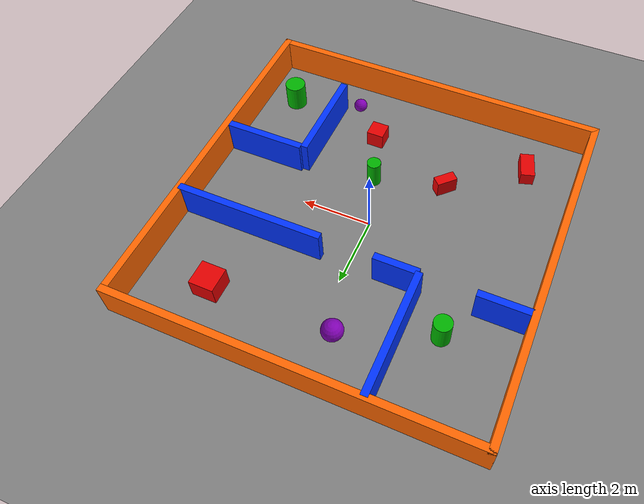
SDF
<?xml version="1.0" ?>
<sdf version="1.6">
  <world name="obstacle_world">

    <!--                  SCENE & LIGHTING                   -->
    <scene>
      <ambient>0.4 0.4 0.4 1</ambient>
      <background>0.7 0.7 0.7 1</background>
      <shadows>true</shadows>
    </scene>

    <light name="sun" type="directional">
      <cast_shadows>true</cast_shadows>
      <pose>0 0 10 0 0 0</pose>
      <diffuse>0.9 0.9 0.9 1</diffuse>
      <specular>0.3 0.3 0.3 1</specular>
      <direction>-0.5 0.1 -0.9</direction>
    </light>

    <!--                   PHYSICS                           -->
    <physics name="default_physics" default="true" type="ode">
      <max_step_size>0.001</max_step_size>
      <real_time_factor>1</real_time_factor>
      <real_time_update_rate>1000</real_time_update_rate>
    </physics>

    <!--                   GROUND PLANE                      -->
    <model name="ground_plane">
      <static>true</static>
      <link name="link">
        <collision name="collision">
          <geometry>
            <plane>
              <normal>0 0 1</normal>
              <size>50 50</size>
            </plane>
          </geometry>
          <surface>
            <friction>
              <ode>
                <mu>1.0</mu>
                <mu2>1.0</mu2>
              </ode>
            </friction>
          </surface>
        </collision>
        <visual name="visual">
          <geometry>
            <plane>
              <normal>0 0 1</normal>
              <size>50 50</size>
            </plane>
          </geometry>
          <material>
            <ambient>0.5 0.5 0.5 1</ambient>
            <diffuse>0.5 0.5 0.5 1</diffuse>
            <specular>0.1 0.1 0.1 1</specular>
            <emissive>0 0 0 1</emissive>
          </material>
        </visual>
      </link>
    </model>

    <!--              OUTER BOUNDARY WALLS (10×10 m)         -->

    <!-- North wall -->
    <model name="wall_north">
      <static>true</static>
      <pose>0 5 0.5 0 0 0</pose>
      <link name="link">
        <collision name="collision">
          <geometry><box><size>10.2 0.2 1.0</size></box></geometry>
        </collision>
        <visual name="visual">
          <geometry><box><size>10.2 0.2 1.0</size></box></geometry>
          <material>
            <ambient>1.0 0.5 0.0 1</ambient>
            <diffuse>1.0 0.4 0.0 1</diffuse>
            <specular>0.1 0.1 0.1 1</specular>
            <emissive>0 0 0 1</emissive>
          </material>
        </visual>
      </link>
    </model>

    <!-- South wall -->
    <model name="wall_south">
      <static>true</static>
      <pose>0 -5 0.5 0 0 0</pose>
      <link name="link">
        <collision name="collision">
          <geometry><box><size>10.2 0.2 1.0</size></box></geometry>
        </collision>
        <visual name="visual">
          <geometry><box><size>10.2 0.2 1.0</size></box></geometry>
          <material>
            <ambient>1.0 0.5 0.0 1</ambient>
            <diffuse>1.0 0.4 0.0 1</diffuse>
            <specular>0.1 0.1 0.1 1</specular>
            <emissive>0 0 0 1</emissive>
          </material>
        </visual>
      </link>
    </model>

    <!-- East wall -->
    <model name="wall_east">
      <static>true</static>
      <pose>5 0 0.5 0 0 0</pose>
      <link name="link">
        <collision name="collision">
          <geometry><box><size>0.2 10.2 1.0</size></box></geometry>
        </collision>
        <visual name="visual">
          <geometry><box><size>0.2 10.2 1.0</size></box></geometry>
          <material>
            <ambient>1.0 0.5 0.0 1</ambient>
            <diffuse>1.0 0.4 0.0 1</diffuse>
            <specular>0.1 0.1 0.1 1</specular>
            <emissive>0 0 0 1</emissive>
          </material>
        </visual>
      </link>
    </model>

    <!-- West wall -->
    <model name="wall_west">
      <static>true</static>
      <pose>-5 0 0.5 0 0 0</pose>
      <link name="link">
        <collision name="collision">
          <geometry><box><size>0.2 10.2 1.0</size></box></geometry>
        </collision>
        <visual name="visual">
          <geometry><box><size>0.2 10.2 1.0</size></box></geometry>
          <material>
            <ambient>1.0 0.5 0.0 1</ambient>
            <diffuse>1.0 0.4 0.0 1</diffuse>
            <specular>0.1 0.1 0.1 1</specular>
            <emissive>0 0 0 1</emissive>
          </material>
        </visual>
      </link>
    </model>

    <!--          INNER PARTITION WALLS (with passages)      -->
    <!--  Horizontal divider at y=1.5 split into 3 segments  -->
    <!--  with TWO 1.5 m gaps so all compartments reachable: -->
    <!--  [wall_h_far_left]  GAP-L  [wall_h_mid]  GAP-C  [wall_h_right] -->
    <!--  GAP-L (1.5 m) gives access to the upper-left area  -->
    <!--  GAP-C (1.5 m) is the central passage               -->

    <!-- Far-left segment: x = -5.0 to -3.5  (length 1.5 m) -->
    <model name="wall_h_far_left">
      <static>true</static>
      <pose>-4.25 1.5 0.5 0 0 0</pose>
      <link name="link">
        <collision name="collision">
          <geometry><box><size>1.5 0.2 1.0</size></box></geometry>
        </collision>
        <visual name="visual">
          <geometry><box><size>1.5 0.2 1.0</size></box></geometry>
          <material>
            <ambient>0.0 0.2 1.0 1</ambient>
            <diffuse>0.0 0.2 1.0 1</diffuse>
            <specular>0.1 0.1 0.1 1</specular>
            <emissive>0 0 0 1</emissive>
          </material>
        </visual>
      </link>
    </model>

    <!-- Middle segment: x = -2.0 to -0.75  (length 1.25 m) -->
    <model name="wall_h_mid">
      <static>true</static>
      <pose>-1.375 1.5 0.5 0 0 0</pose>
      <link name="link">
        <collision name="collision">
          <geometry><box><size>1.25 0.2 1.0</size></box></geometry>
        </collision>
        <visual name="visual">
          <geometry><box><size>1.25 0.2 1.0</size></box></geometry>
          <material>
            <ambient>0.0 0.2 1.0 1</ambient>
            <diffuse>0.0 0.2 1.0 1</diffuse>
            <specular>0.1 0.1 0.1 1</specular>
            <emissive>0 0 0 1</emissive>
          </material>
        </visual>
      </link>
    </model>

    <!-- Right segment: x = 0.75 to 5.0  (length 4.25 m) -->
    <model name="wall_h_right">
      <static>true</static>
      <pose>2.875 1.5 0.5 0 0 0</pose>
      <link name="link">
        <collision name="collision">
          <geometry><box><size>4.25 0.2 1.0</size></box></geometry>
        </collision>
        <visual name="visual">
          <geometry><box><size>4.25 0.2 1.0</size></box></geometry>
          <material>
            <ambient>0.0 0.2 1.0 1</ambient>
            <diffuse>0.0 0.2 1.0 1</diffuse>
            <specular>0.1 0.1 0.1 1</specular>
            <emissive>0 0 0 1</emissive>
          </material>
        </visual>
      </link>
    </model>

    <!-- Vertical wall dividing upper area: x=-2.0, y from 1.5 to 5.0 -->
    <model name="inner_wall_v1">
      <static>true</static>
      <pose>-2.0 3.25 0.5 0 0 0</pose>
      <link name="link">
        <collision name="collision">
          <geometry><box><size>0.2 3.5 1.0</size></box></geometry>
        </collision>
        <visual name="visual">
          <geometry><box><size>0.2 3.5 1.0</size></box></geometry>
          <material>
            <ambient>0.0 0.2 1.0 1</ambient>
            <diffuse>0.0 0.2 1.0 1</diffuse>
            <specular>0.1 0.1 0.1 1</specular>
            <emissive>0 0 0 1</emissive>
          </material>
        </visual>
      </link>
    </model>

    <!-- Vertical wall in lower-right: x=2.5, y from -3.9 to -1.1 -->
    <model name="inner_wall_v2">
      <static>true</static>
      <pose>2.5 -2.5 0.5 0 0 0</pose>
      <link name="link">
        <collision name="collision">
          <geometry><box><size>0.2 2.8 1.0</size></box></geometry>
        </collision>
        <visual name="visual">
          <geometry><box><size>0.2 2.8 1.0</size></box></geometry>
          <material>
            <ambient>0.0 0.2 1.0 1</ambient>
            <diffuse>0.0 0.2 1.0 1</diffuse>
            <specular>0.1 0.1 0.1 1</specular>
            <emissive>0 0 0 1</emissive>
          </material>
        </visual>
      </link>
    </model>

    <!-- Horizontal cap of the lower-right pocket: y=-1.1, x from 2.5 to 4.9 -->
    <model name="inner_wall_h2">
      <static>true</static>
      <pose>3.75 -1.1 0.5 0 0 0</pose>
      <link name="link">
        <collision name="collision">
          <geometry><box><size>2.3 0.2 1.0</size></box></geometry>
        </collision>
        <visual name="visual">
          <geometry><box><size>2.3 0.2 1.0</size></box></geometry>
          <material>
            <ambient>0.0 0.2 1.0 1</ambient>
            <diffuse>0.0 0.2 1.0 1</diffuse>
            <specular>0.1 0.1 0.1 1</specular>
            <emissive>0 0 0 1</emissive>
          </material>
        </visual>
      </link>
    </model>

    <!--              BOX OBSTACLES (static)                 -->

    <model name="box_1">
      <static>true</static>
      <pose>1.0 -3.0 0.25 0 0 0</pose>
      <link name="link">
        <collision name="collision">
          <geometry><box><size>0.5 0.5 0.5</size></box></geometry>
        </collision>
        <visual name="visual">
          <geometry><box><size>0.5 0.5 0.5</size></box></geometry>
          <material>
            <ambient>1.0 0.0 0.0 1</ambient>
            <diffuse>0.9 0.0 0.0 1</diffuse>
            <specular>0.1 0.1 0.1 1</specular>
            <emissive>0 0 0 1</emissive>
          </material>
        </visual>
      </link>
    </model>

    <model name="box_2">
      <static>true</static>
      <pose>-1.5 -2.0 0.25 0 0 0.785</pose>
      <link name="link">
        <collision name="collision">
          <geometry><box><size>0.6 0.3 0.5</size></box></geometry>
        </collision>
        <visual name="visual">
          <geometry><box><size>0.6 0.3 0.5</size></box></geometry>
          <material>
            <ambient>1.0 0.0 0.0 1</ambient>
            <diffuse>0.9 0.0 0.0 1</diffuse>
            <specular>0.1 0.1 0.1 1</specular>
            <emissive>0 0 0 1</emissive>
          </material>
        </visual>
      </link>
    </model>

    <model name="box_3">
      <static>true</static>
      <pose>3.0 3.5 0.3 0 0 0</pose>
      <link name="link">
        <collision name="collision">
          <geometry><box><size>0.7 0.7 0.6</size></box></geometry>
        </collision>
        <visual name="visual">
          <geometry><box><size>0.7 0.7 0.6</size></box></geometry>
          <material>
            <ambient>1.0 0.0 0.0 1</ambient>
            <diffuse>0.9 0.0 0.0 1</diffuse>
            <specular>0.1 0.1 0.1 1</specular>
            <emissive>0 0 0 1</emissive>
          </material>
        </visual>
      </link>
    </model>

    <model name="box_4">
      <static>true</static>
      <pose>-3.5 -3.5 0.2 0 0 0.3</pose>
      <link name="link">
        <collision name="collision">
          <geometry><box><size>0.4 0.8 0.4</size></box></geometry>
        </collision>
        <visual name="visual">
          <geometry><box><size>0.4 0.8 0.4</size></box></geometry>
          <material>
            <ambient>1.0 0.0 0.0 1</ambient>
            <diffuse>0.9 0.0 0.0 1</diffuse>
            <specular>0.1 0.1 0.1 1</specular>
            <emissive>0 0 0 1</emissive>
          </material>
        </visual>
      </link>
    </model>

    <!--            CYLINDER OBSTACLES (static)              -->

    <model name="cylinder_1">
      <static>true</static>
      <pose>-3.0 2.5 0.4 0 0 0</pose>
      <link name="link">
        <collision name="collision">
          <geometry><cylinder><radius>0.25</radius><length>0.8</length></cylinder></geometry>
        </collision>
        <visual name="visual">
          <geometry><cylinder><radius>0.25</radius><length>0.8</length></cylinder></geometry>
          <material>
            <ambient>0.0 0.7 0.0 1</ambient>
            <diffuse>0.0 0.7 0.0 1</diffuse>
            <specular>0.1 0.1 0.1 1</specular>
            <emissive>0 0 0 1</emissive>
          </material>
        </visual>
      </link>
    </model>

    <model name="cylinder_2">
      <static>true</static>
      <pose>0.5 -1.5 0.4 0 0 0</pose>
      <link name="link">
        <collision name="collision">
          <geometry><cylinder><radius>0.2</radius><length>0.8</length></cylinder></geometry>
        </collision>
        <visual name="visual">
          <geometry><cylinder><radius>0.2</radius><length>0.8</length></cylinder></geometry>
          <material>
            <ambient>0.0 0.7 0.0 1</ambient>
            <diffuse>0.0 0.7 0.0 1</diffuse>
            <specular>0.1 0.1 0.1 1</specular>
            <emissive>0 0 0 1</emissive>
          </material>
        </visual>
      </link>
    </model>

    <model name="cylinder_3">
      <static>true</static>
      <pose>4.0 -3.5 0.4 0 0 0</pose>
      <link name="link">
        <collision name="collision">
          <geometry><cylinder><radius>0.3</radius><length>0.8</length></cylinder></geometry>
        </collision>
        <visual name="visual">
          <geometry><cylinder><radius>0.3</radius><length>0.8</length></cylinder></geometry>
          <material>
            <ambient>0.0 0.7 0.0 1</ambient>
            <diffuse>0.0 0.7 0.0 1</diffuse>
            <specular>0.1 0.1 0.1 1</specular>
            <emissive>0 0 0 1</emissive>
          </material>
        </visual>
      </link>
    </model>

    <!--            SPHERE OBSTACLES (static)                -->

    <model name="sphere_1">
      <static>true</static>
      <pose>-0.5 3.5 0.3 0 0 0</pose>
      <link name="link">
        <collision name="collision">
          <geometry><sphere><radius>0.3</radius></sphere></geometry>
        </collision>
        <visual name="visual">
          <geometry><sphere><radius>0.3</radius></sphere></geometry>
          <material>
            <ambient>0.6 0.0 0.8 1</ambient>
            <diffuse>0.5 0.0 0.7 1</diffuse>
            <specular>0.1 0.1 0.1 1</specular>
            <emissive>0 0 0 1</emissive>
          </material>
        </visual>
      </link>
    </model>

    <model name="sphere_2">
      <static>true</static>
      <pose>2.0 -4.0 0.2 0 0 0</pose>
      <link name="link">
        <collision name="collision">
          <geometry><sphere><radius>0.2</radius></sphere></geometry>
        </collision>
        <visual name="visual">
          <geometry><sphere><radius>0.2</radius></sphere></geometry>
          <material>
            <ambient>0.6 0.0 0.8 1</ambient>
            <diffuse>0.5 0.0 0.7 1</diffuse>
            <specular>0.1 0.1 0.1 1</specular>
            <emissive>0 0 0 1</emissive>
          </material>
        </visual>
      </link>
    </model>

  </world>
</sdf>
